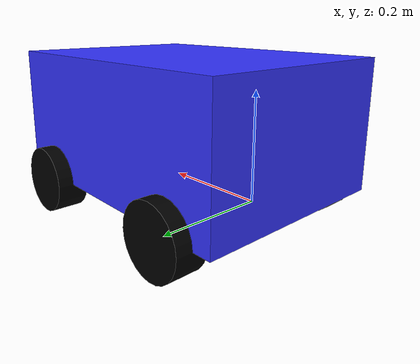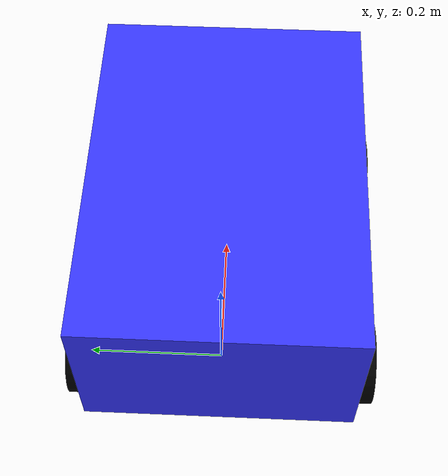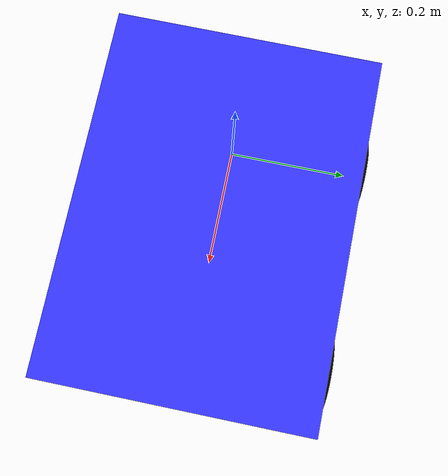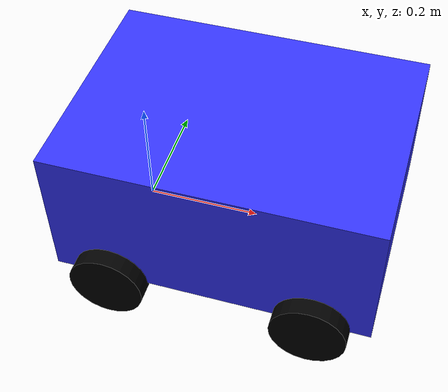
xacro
<?xml version="1.0"?>
<robot xmlns:xacro="http://www.ros.org/wiki/xacro" >
 <xacro:include filename="inertial_macros.xacro" />
    <xacro:property name="chassis_length" value="0.55"/>
    <xacro:property name="chassis_width" value="0.4"/>
    <xacro:property name="chassis_height" value="0.25"/>
    <xacro:property name="chassis_mass" value="0.5"/>
    <xacro:property name="wheel_radius" value="0.065"/>
    <xacro:property name="wheel_thickness" value="0.06"/>
    <xacro:property name="wheel_mass" value="0.1"/>
    <xacro:property name="wheel_offset_x" value="0.45"/>
    <xacro:property name="wheel_offset_y" value="0.2"/>

<material name="white">
    <color rgba="1 1 1 1"/>
</material>

<material name="orange">
    <color rgba="1 0.3 0.1 1"/>
</material>

<material name="blue">
    <color rgba="0.2 0.2 1 1"/>
</material>

<material name="red">
    <color rgba="1 0 0 1"/>
</material>

<material name="black">
    <color rgba="0 0 0 1"/>
</material>

<!-- BASE LINK -->
<link name="base_link">

</link>

<!-- BASE_FOOTPRINT LINK -->
<joint name="base_footprint_joint" type="fixed">
    <parent link="base_link"/>
    <child link="base_footprint"/>
    <origin xyz="0 0 0" rpy="0 0 0"/>
</joint>

<link name="base_footprint">
</link>

<!-- CHASSIS LINK -->
<joint name="chasis_joint" type="fixed">
  <parent link="base_link"/>
  <child link="chassis"/>
  <origin xyz="-0.1 0 0"/>
</joint>

<link name="chassis">
    <visual>
        <origin xyz="${chassis_length/2} 0 ${chassis_height/2}" rpy="0 0 0"/>
        <geometry>
            <box size="${chassis_length} ${chassis_width} ${chassis_height}"/>
        </geometry>
        <material name="blue"/>
    </visual>

    <collision>
        <origin xyz="${chassis_length/2} 0 ${chassis_height/2}" rpy="0 0 0"/>
        <geometry>
            <box size="${chassis_length} ${chassis_width} ${chassis_height}"/>
        </geometry>
    </collision>
    <xacro:inertial_box mass="${chassis_mass}" x="${chassis_length}" y="${chassis_width}" z="${chassis_height}">
     <origin xyz="${chassis_length/2} 0 ${chassis_height/2}" rpy="0 0 0"/>
    </xacro:inertial_box>
</link>
<gazebo reference="chassis">
    <material>Gazebo/Blue</material>
</gazebo>

<!-- Back LEFT WHEEL -->
<joint name="back_left_wheel_joint" type="continuous">
    <parent link="base_link"/>
    <child link="back_left_wheel"/>
    <origin xyz="0 ${wheel_offset_y} 0" rpy="-${pi/2} 0 0"/>
    <axis xyz="0 0 1"/>
</joint>

<link name="back_left_wheel">
    <visual>
        <geometry>
            <cylinder length="${wheel_thickness}" radius="${wheel_radius}" />
        </geometry>
        <material name="black"/>
    </visual>
    <collision>
        <geometry>
            <cylinder length="${wheel_thickness}" radius="${wheel_radius}" />
        </geometry>
    </collision>
    <xacro:inertial_cylinder mass="${wheel_mass}" length="${wheel_thickness}" radius="${wheel_radius}">
      <origin xyz="0 0 0" rpy="0 0 0"/>
    </xacro:inertial_cylinder>
</link>
<gazebo reference="back_left_wheel">
    <material>Gazebo/Black</material>
</gazebo>
<!-- BACK RIGHT WHEEL -->

<joint name="back_right_wheel_joint" type="continuous">
    <parent link="base_link"/>
    <child link="back_right_wheel"/>
    <origin xyz="0 ${-wheel_offset_y} 0" rpy="${pi/2} 0 0"/>
    <axis xyz="0 0 -1"/>
</joint>

<link name="back_right_wheel">
    <visual>
        <geometry>
            <cylinder length="${wheel_thickness}" radius="${wheel_radius}" />
        </geometry>
        <material name="black"/>
    </visual>
    <collision>
        <geometry>
            <cylinder length="${wheel_thickness}" radius="${wheel_radius}" />
        </geometry>
    </collision>
    <xacro:inertial_cylinder mass="${wheel_mass}" length="${wheel_thickness}" radius="${wheel_radius}">
      <origin xyz="0 0 0" rpy="0 0 0"/>
    </xacro:inertial_cylinder>
</link>
<gazebo reference="back_right_wheel">
    <material>Gazebo/Black</material>
</gazebo>

<!-- FRONT LEFT WHEEL -->
<joint name="front_left_wheel_joint" type="fixed">
    <parent link="chassis"/>
    <child link="front_left_wheel"/>
    <origin xyz="${wheel_offset_x} ${wheel_offset_y} 0" rpy="-${pi/2} 0 0"/>
    <axis xyz="0 0 1"/>
</joint>

<link name="front_left_wheel">
    <visual>
        <geometry>
            <cylinder length="${wheel_thickness}" radius="${wheel_radius}" />
        </geometry>
        <material name="black"/>
    </visual>
    <collision>
        <geometry>
            <cylinder length="${wheel_thickness}" radius="${wheel_radius}" />
        </geometry>
        <material name="black"/>
    </collision>
    <xacro:inertial_cylinder mass="${wheel_mass}" length="${wheel_thickness}" radius="${wheel_radius}">
      <origin xyz="0 0 0" rpy="0 0 0"/>
    </xacro:inertial_cylinder>

</link>
<gazebo reference="front_left_wheel">
    <material>Gazebo/Black</material>
</gazebo>
<!-- FRONT RIGHT WHEEL -->

<joint name="front_right_wheel_joint" type="fixed">
    <parent link="chassis"/>
    <child link="front_right_wheel"/>
    <origin xyz="${wheel_offset_x} ${-wheel_offset_y} 0" rpy="${pi/2} 0 0"/>
    <axis xyz="0 0 -1"/>
</joint>

<link name="front_right_wheel">
    <visual>
        <geometry>
         <cylinder length="${wheel_thickness}" radius="${wheel_radius}"/>
        </geometry>
        <material name="black"/>
    </visual>
    <collision>
        <geometry>
            <cylinder length="${wheel_thickness}" radius="${wheel_radius}" />
        </geometry>
        <material name="black"/>
    </collision>
    <xacro:inertial_cylinder mass="${wheel_mass}" length="${wheel_thickness}" radius="${wheel_radius}">
      <origin xyz="0 0 0" rpy="0 0 0"/>
    </xacro:inertial_cylinder>
</link>

 <gazebo reference="front_right_wheel">
    <material>Gazebo/Black</material>
</gazebo>

</robot>
